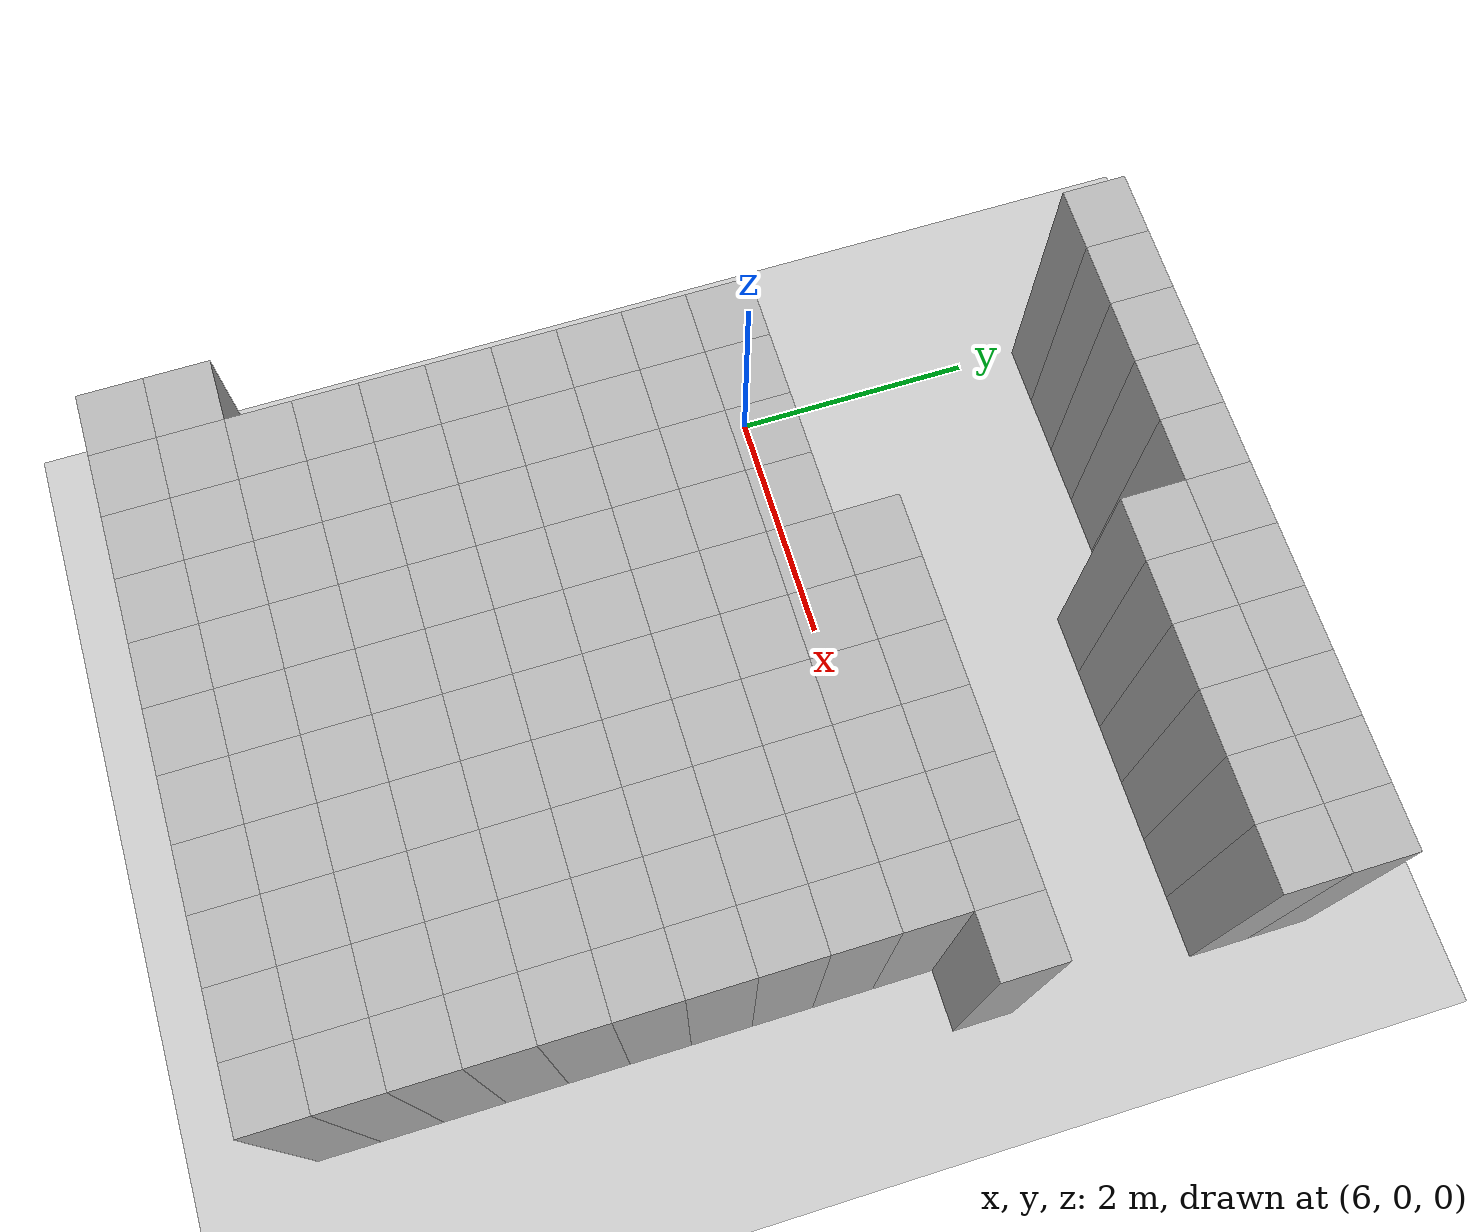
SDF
<sdf version="1.6">
 <world name="map_world">
  <include><uri>model://ground_plane</uri></include>
  <include><uri>model://sun</uri></include>
  <model name="wall_22">
   <static>true</static>
   <pose>6.250 2.750 1.250 0 0 0</pose>
   <link name="link">
    <collision name="collision"><geometry><box><size>0.500 0.500 2.500</size></box></geometry></collision>
    <visual name="visual"><geometry><box><size>0.500 0.500 2.500</size></box></geometry></visual>
   </link>
  </model>
  <model name="wall_23">
   <static>true</static>
   <pose>6.750 2.750 1.250 0 0 0</pose>
   <link name="link">
    <collision name="collision"><geometry><box><size>0.500 0.500 2.500</size></box></geometry></collision>
    <visual name="visual"><geometry><box><size>0.500 0.500 2.500</size></box></geometry></visual>
   </link>
  </model>
  <model name="wall_24">
   <static>true</static>
   <pose>7.250 2.750 1.250 0 0 0</pose>
   <link name="link">
    <collision name="collision"><geometry><box><size>0.500 0.500 2.500</size></box></geometry></collision>
    <visual name="visual"><geometry><box><size>0.500 0.500 2.500</size></box></geometry></visual>
   </link>
  </model>
  <model name="wall_25">
   <static>true</static>
   <pose>7.750 2.750 1.250 0 0 0</pose>
   <link name="link">
    <collision name="collision"><geometry><box><size>0.500 0.500 2.500</size></box></geometry></collision>
    <visual name="visual"><geometry><box><size>0.500 0.500 2.500</size></box></geometry></visual>
   </link>
  </model>
  <model name="wall_26">
   <static>true</static>
   <pose>8.250 2.750 1.250 0 0 0</pose>
   <link name="link">
    <collision name="collision"><geometry><box><size>0.500 0.500 2.500</size></box></geometry></collision>
    <visual name="visual"><geometry><box><size>0.500 0.500 2.500</size></box></geometry></visual>
   </link>
  </model>
  <model name="wall_27">
   <static>true</static>
   <pose>8.750 2.750 1.250 0 0 0</pose>
   <link name="link">
    <collision name="collision"><geometry><box><size>0.500 0.500 2.500</size></box></geometry></collision>
    <visual name="visual"><geometry><box><size>0.500 0.500 2.500</size></box></geometry></visual>
   </link>
  </model>
  <model name="wall_28">
   <static>true</static>
   <pose>9.250 2.750 1.250 0 0 0</pose>
   <link name="link">
    <collision name="collision"><geometry><box><size>0.500 0.500 2.500</size></box></geometry></collision>
    <visual name="visual"><geometry><box><size>0.500 0.500 2.500</size></box></geometry></visual>
   </link>
  </model>
  <model name="wall_29">
   <static>true</static>
   <pose>9.750 2.750 1.250 0 0 0</pose>
   <link name="link">
    <collision name="collision"><geometry><box><size>0.500 0.500 2.500</size></box></geometry></collision>
    <visual name="visual"><geometry><box><size>0.500 0.500 2.500</size></box></geometry></visual>
   </link>
  </model>
  <model name="wall_30">
   <static>true</static>
   <pose>10.250 2.750 1.250 0 0 0</pose>
   <link name="link">
    <collision name="collision"><geometry><box><size>0.500 0.500 2.500</size></box></geometry></collision>
    <visual name="visual"><geometry><box><size>0.500 0.500 2.500</size></box></geometry></visual>
   </link>
  </model>
  <model name="wall_31">
   <static>true</static>
   <pose>10.750 2.750 1.250 0 0 0</pose>
   <link name="link">
    <collision name="collision"><geometry><box><size>0.500 0.500 2.500</size></box></geometry></collision>
    <visual name="visual"><geometry><box><size>0.500 0.500 2.500</size></box></geometry></visual>
   </link>
  </model>
  <model name="wall_32">
   <static>true</static>
   <pose>11.250 2.750 1.250 0 0 0</pose>
   <link name="link">
    <collision name="collision"><geometry><box><size>0.500 0.500 2.500</size></box></geometry></collision>
    <visual name="visual"><geometry><box><size>0.500 0.500 2.500</size></box></geometry></visual>
   </link>
  </model>
  <model name="wall_92">
   <static>true</static>
   <pose>8.750 2.250 1.250 0 0 0</pose>
   <link name="link">
    <collision name="collision"><geometry><box><size>0.500 0.500 2.500</size></box></geometry></collision>
    <visual name="visual"><geometry><box><size>0.500 0.500 2.500</size></box></geometry></visual>
   </link>
  </model>
  <model name="wall_93">
   <static>true</static>
   <pose>9.250 2.250 1.250 0 0 0</pose>
   <link name="link">
    <collision name="collision"><geometry><box><size>0.500 0.500 2.500</size></box></geometry></collision>
    <visual name="visual"><geometry><box><size>0.500 0.500 2.500</size></box></geometry></visual>
   </link>
  </model>
  <model name="wall_94">
   <static>true</static>
   <pose>9.750 2.250 1.250 0 0 0</pose>
   <link name="link">
    <collision name="collision"><geometry><box><size>0.500 0.500 2.500</size></box></geometry></collision>
    <visual name="visual"><geometry><box><size>0.500 0.500 2.500</size></box></geometry></visual>
   </link>
  </model>
  <model name="wall_95">
   <static>true</static>
   <pose>10.250 2.250 1.250 0 0 0</pose>
   <link name="link">
    <collision name="collision"><geometry><box><size>0.500 0.500 2.500</size></box></geometry></collision>
    <visual name="visual"><geometry><box><size>0.500 0.500 2.500</size></box></geometry></visual>
   </link>
  </model>
  <model name="wall_96">
   <static>true</static>
   <pose>10.750 2.250 1.250 0 0 0</pose>
   <link name="link">
    <collision name="collision"><geometry><box><size>0.500 0.500 2.500</size></box></geometry></collision>
    <visual name="visual"><geometry><box><size>0.500 0.500 2.500</size></box></geometry></visual>
   </link>
  </model>
  <model name="wall_97">
   <static>true</static>
   <pose>11.250 2.250 1.250 0 0 0</pose>
   <link name="link">
    <collision name="collision"><geometry><box><size>0.500 0.500 2.500</size></box></geometry></collision>
    <visual name="visual"><geometry><box><size>0.500 0.500 2.500</size></box></geometry></visual>
   </link>
  </model>
  <model name="wall_125">
   <static>true</static>
   <pose>8.250 0.250 1.250 0 0 0</pose>
   <link name="link">
    <collision name="collision"><geometry><box><size>0.500 0.500 2.500</size></box></geometry></collision>
    <visual name="visual"><geometry><box><size>0.500 0.500 2.500</size></box></geometry></visual>
   </link>
  </model>
  <model name="wall_126">
   <static>true</static>
   <pose>8.750 0.250 1.250 0 0 0</pose>
   <link name="link">
    <collision name="collision"><geometry><box><size>0.500 0.500 2.500</size></box></geometry></collision>
    <visual name="visual"><geometry><box><size>0.500 0.500 2.500</size></box></geometry></visual>
   </link>
  </model>
  <model name="wall_127">
   <static>true</static>
   <pose>9.250 0.250 1.250 0 0 0</pose>
   <link name="link">
    <collision name="collision"><geometry><box><size>0.500 0.500 2.500</size></box></geometry></collision>
    <visual name="visual"><geometry><box><size>0.500 0.500 2.500</size></box></geometry></visual>
   </link>
  </model>
  <model name="wall_128">
   <static>true</static>
   <pose>9.750 0.250 1.250 0 0 0</pose>
   <link name="link">
    <collision name="collision"><geometry><box><size>0.500 0.500 2.500</size></box></geometry></collision>
    <visual name="visual"><geometry><box><size>0.500 0.500 2.500</size></box></geometry></visual>
   </link>
  </model>
  <model name="wall_129">
   <static>true</static>
   <pose>10.250 0.250 1.250 0 0 0</pose>
   <link name="link">
    <collision name="collision"><geometry><box><size>0.500 0.500 2.500</size></box></geometry></collision>
    <visual name="visual"><geometry><box><size>0.500 0.500 2.500</size></box></geometry></visual>
   </link>
  </model>
  <model name="wall_130">
   <static>true</static>
   <pose>10.750 0.250 1.250 0 0 0</pose>
   <link name="link">
    <collision name="collision"><geometry><box><size>0.500 0.500 2.500</size></box></geometry></collision>
    <visual name="visual"><geometry><box><size>0.500 0.500 2.500</size></box></geometry></visual>
   </link>
  </model>
  <model name="wall_131">
   <static>true</static>
   <pose>11.250 0.250 1.250 0 0 0</pose>
   <link name="link">
    <collision name="collision"><geometry><box><size>0.500 0.500 2.500</size></box></geometry></collision>
    <visual name="visual"><geometry><box><size>0.500 0.500 2.500</size></box></geometry></visual>
   </link>
  </model>
  <model name="wall_166">
   <static>true</static>
   <pose>6.250 -0.250 1.250 0 0 0</pose>
   <link name="link">
    <collision name="collision"><geometry><box><size>0.500 0.500 2.500</size></box></geometry></collision>
    <visual name="visual"><geometry><box><size>0.500 0.500 2.500</size></box></geometry></visual>
   </link>
  </model>
  <model name="wall_167">
   <static>true</static>
   <pose>6.750 -0.250 1.250 0 0 0</pose>
   <link name="link">
    <collision name="collision"><geometry><box><size>0.500 0.500 2.500</size></box></geometry></collision>
    <visual name="visual"><geometry><box><size>0.500 0.500 2.500</size></box></geometry></visual>
   </link>
  </model>
  <model name="wall_168">
   <static>true</static>
   <pose>7.250 -0.250 1.250 0 0 0</pose>
   <link name="link">
    <collision name="collision"><geometry><box><size>0.500 0.500 2.500</size></box></geometry></collision>
    <visual name="visual"><geometry><box><size>0.500 0.500 2.500</size></box></geometry></visual>
   </link>
  </model>
  <model name="wall_169">
   <static>true</static>
   <pose>7.750 -0.250 1.250 0 0 0</pose>
   <link name="link">
    <collision name="collision"><geometry><box><size>0.500 0.500 2.500</size></box></geometry></collision>
    <visual name="visual"><geometry><box><size>0.500 0.500 2.500</size></box></geometry></visual>
   </link>
  </model>
  <model name="wall_170">
   <static>true</static>
   <pose>8.250 -0.250 1.250 0 0 0</pose>
   <link name="link">
    <collision name="collision"><geometry><box><size>0.500 0.500 2.500</size></box></geometry></collision>
    <visual name="visual"><geometry><box><size>0.500 0.500 2.500</size></box></geometry></visual>
   </link>
  </model>
  <model name="wall_171">
   <static>true</static>
   <pose>8.750 -0.250 1.250 0 0 0</pose>
   <link name="link">
    <collision name="collision"><geometry><box><size>0.500 0.500 2.500</size></box></geometry></collision>
    <visual name="visual"><geometry><box><size>0.500 0.500 2.500</size></box></geometry></visual>
   </link>
  </model>
  <model name="wall_172">
   <static>true</static>
   <pose>9.250 -0.250 1.250 0 0 0</pose>
   <link name="link">
    <collision name="collision"><geometry><box><size>0.500 0.500 2.500</size></box></geometry></collision>
    <visual name="visual"><geometry><box><size>0.500 0.500 2.500</size></box></geometry></visual>
   </link>
  </model>
  <model name="wall_173">
   <static>true</static>
   <pose>9.750 -0.250 1.250 0 0 0</pose>
   <link name="link">
    <collision name="collision"><geometry><box><size>0.500 0.500 2.500</size></box></geometry></collision>
    <visual name="visual"><geometry><box><size>0.500 0.500 2.500</size></box></geometry></visual>
   </link>
  </model>
  <model name="wall_174">
   <static>true</static>
   <pose>10.250 -0.250 1.250 0 0 0</pose>
   <link name="link">
    <collision name="collision"><geometry><box><size>0.500 0.500 2.500</size></box></geometry></collision>
    <visual name="visual"><geometry><box><size>0.500 0.500 2.500</size></box></geometry></visual>
   </link>
  </model>
  <model name="wall_175">
   <static>true</static>
   <pose>10.750 -0.250 1.250 0 0 0</pose>
   <link name="link">
    <collision name="collision"><geometry><box><size>0.500 0.500 2.500</size></box></geometry></collision>
    <visual name="visual"><geometry><box><size>0.500 0.500 2.500</size></box></geometry></visual>
   </link>
  </model>
  <model name="wall_238">
   <static>true</static>
   <pose>6.250 -0.750 1.250 0 0 0</pose>
   <link name="link">
    <collision name="collision"><geometry><box><size>0.500 0.500 2.500</size></box></geometry></collision>
    <visual name="visual"><geometry><box><size>0.500 0.500 2.500</size></box></geometry></visual>
   </link>
  </model>
  <model name="wall_239">
   <static>true</static>
   <pose>6.750 -0.750 1.250 0 0 0</pose>
   <link name="link">
    <collision name="collision"><geometry><box><size>0.500 0.500 2.500</size></box></geometry></collision>
    <visual name="visual"><geometry><box><size>0.500 0.500 2.500</size></box></geometry></visual>
   </link>
  </model>
  <model name="wall_240">
   <static>true</static>
   <pose>7.250 -0.750 1.250 0 0 0</pose>
   <link name="link">
    <collision name="collision"><geometry><box><size>0.500 0.500 2.500</size></box></geometry></collision>
    <visual name="visual"><geometry><box><size>0.500 0.500 2.500</size></box></geometry></visual>
   </link>
  </model>
  <model name="wall_241">
   <static>true</static>
   <pose>7.750 -0.750 1.250 0 0 0</pose>
   <link name="link">
    <collision name="collision"><geometry><box><size>0.500 0.500 2.500</size></box></geometry></collision>
    <visual name="visual"><geometry><box><size>0.500 0.500 2.500</size></box></geometry></visual>
   </link>
  </model>
  <model name="wall_242">
   <static>true</static>
   <pose>8.250 -0.750 1.250 0 0 0</pose>
   <link name="link">
    <collision name="collision"><geometry><box><size>0.500 0.500 2.500</size></box></geometry></collision>
    <visual name="visual"><geometry><box><size>0.500 0.500 2.500</size></box></geometry></visual>
   </link>
  </model>
  <model name="wall_243">
   <static>true</static>
   <pose>8.750 -0.750 1.250 0 0 0</pose>
   <link name="link">
    <collision name="collision"><geometry><box><size>0.500 0.500 2.500</size></box></geometry></collision>
    <visual name="visual"><geometry><box><size>0.500 0.500 2.500</size></box></geometry></visual>
   </link>
  </model>
  <model name="wall_244">
   <static>true</static>
   <pose>9.250 -0.750 1.250 0 0 0</pose>
   <link name="link">
    <collision name="collision"><geometry><box><size>0.500 0.500 2.500</size></box></geometry></collision>
    <visual name="visual"><geometry><box><size>0.500 0.500 2.500</size></box></geometry></visual>
   </link>
  </model>
  <model name="wall_245">
   <static>true</static>
   <pose>9.750 -0.750 1.250 0 0 0</pose>
   <link name="link">
    <collision name="collision"><geometry><box><size>0.500 0.500 2.500</size></box></geometry></collision>
    <visual name="visual"><geometry><box><size>0.500 0.500 2.500</size></box></geometry></visual>
   </link>
  </model>
  <model name="wall_246">
   <static>true</static>
   <pose>10.250 -0.750 1.250 0 0 0</pose>
   <link name="link">
    <collision name="collision"><geometry><box><size>0.500 0.500 2.500</size></box></geometry></collision>
    <visual name="visual"><geometry><box><size>0.500 0.500 2.500</size></box></geometry></visual>
   </link>
  </model>
  <model name="wall_247">
   <static>true</static>
   <pose>10.750 -0.750 1.250 0 0 0</pose>
   <link name="link">
    <collision name="collision"><geometry><box><size>0.500 0.500 2.500</size></box></geometry></collision>
    <visual name="visual"><geometry><box><size>0.500 0.500 2.500</size></box></geometry></visual>
   </link>
  </model>
  <model name="wall_310">
   <static>true</static>
   <pose>6.250 -1.250 1.250 0 0 0</pose>
   <link name="link">
    <collision name="collision"><geometry><box><size>0.500 0.500 2.500</size></box></geometry></collision>
    <visual name="visual"><geometry><box><size>0.500 0.500 2.500</size></box></geometry></visual>
   </link>
  </model>
  <model name="wall_311">
   <static>true</static>
   <pose>6.750 -1.250 1.250 0 0 0</pose>
   <link name="link">
    <collision name="collision"><geometry><box><size>0.500 0.500 2.500</size></box></geometry></collision>
    <visual name="visual"><geometry><box><size>0.500 0.500 2.500</size></box></geometry></visual>
   </link>
  </model>
  <model name="wall_312">
   <static>true</static>
   <pose>7.250 -1.250 1.250 0 0 0</pose>
   <link name="link">
    <collision name="collision"><geometry><box><size>0.500 0.500 2.500</size></box></geometry></collision>
    <visual name="visual"><geometry><box><size>0.500 0.500 2.500</size></box></geometry></visual>
   </link>
  </model>
  <model name="wall_313">
   <static>true</static>
   <pose>7.750 -1.250 1.250 0 0 0</pose>
   <link name="link">
    <collision name="collision"><geometry><box><size>0.500 0.500 2.500</size></box></geometry></collision>
    <visual name="visual"><geometry><box><size>0.500 0.500 2.500</size></box></geometry></visual>
   </link>
  </model>
  <model name="wall_314">
   <static>true</static>
   <pose>8.250 -1.250 1.250 0 0 0</pose>
   <link name="link">
    <collision name="collision"><geometry><box><size>0.500 0.500 2.500</size></box></geometry></collision>
    <visual name="visual"><geometry><box><size>0.500 0.500 2.500</size></box></geometry></visual>
   </link>
  </model>
  <model name="wall_315">
   <static>true</static>
   <pose>8.750 -1.250 1.250 0 0 0</pose>
   <link name="link">
    <collision name="collision"><geometry><box><size>0.500 0.500 2.500</size></box></geometry></collision>
    <visual name="visual"><geometry><box><size>0.500 0.500 2.500</size></box></geometry></visual>
   </link>
  </model>
  <model name="wall_316">
   <static>true</static>
   <pose>9.250 -1.250 1.250 0 0 0</pose>
   <link name="link">
    <collision name="collision"><geometry><box><size>0.500 0.500 2.500</size></box></geometry></collision>
    <visual name="visual"><geometry><box><size>0.500 0.500 2.500</size></box></geometry></visual>
   </link>
  </model>
  <model name="wall_317">
   <static>true</static>
   <pose>9.750 -1.250 1.250 0 0 0</pose>
   <link name="link">
    <collision name="collision"><geometry><box><size>0.500 0.500 2.500</size></box></geometry></collision>
    <visual name="visual"><geometry><box><size>0.500 0.500 2.500</size></box></geometry></visual>
   </link>
  </model>
  <model name="wall_318">
   <static>true</static>
   <pose>10.250 -1.250 1.250 0 0 0</pose>
   <link name="link">
    <collision name="collision"><geometry><box><size>0.500 0.500 2.500</size></box></geometry></collision>
    <visual name="visual"><geometry><box><size>0.500 0.500 2.500</size></box></geometry></visual>
   </link>
  </model>
  <model name="wall_319">
   <static>true</static>
   <pose>10.750 -1.250 1.250 0 0 0</pose>
   <link name="link">
    <collision name="collision"><geometry><box><size>0.500 0.500 2.500</size></box></geometry></collision>
    <visual name="visual"><geometry><box><size>0.500 0.500 2.500</size></box></geometry></visual>
   </link>
  </model>
  <model name="wall_382">
   <static>true</static>
   <pose>6.250 -1.750 1.250 0 0 0</pose>
   <link name="link">
    <collision name="collision"><geometry><box><size>0.500 0.500 2.500</size></box></geometry></collision>
    <visual name="visual"><geometry><box><size>0.500 0.500 2.500</size></box></geometry></visual>
   </link>
  </model>
  <model name="wall_383">
   <static>true</static>
   <pose>6.750 -1.750 1.250 0 0 0</pose>
   <link name="link">
    <collision name="collision"><geometry><box><size>0.500 0.500 2.500</size></box></geometry></collision>
    <visual name="visual"><geometry><box><size>0.500 0.500 2.500</size></box></geometry></visual>
   </link>
  </model>
  <model name="wall_384">
   <static>true</static>
   <pose>7.250 -1.750 1.250 0 0 0</pose>
   <link name="link">
    <collision name="collision"><geometry><box><size>0.500 0.500 2.500</size></box></geometry></collision>
    <visual name="visual"><geometry><box><size>0.500 0.500 2.500</size></box></geometry></visual>
   </link>
  </model>
  <model name="wall_385">
   <static>true</static>
   <pose>7.750 -1.750 1.250 0 0 0</pose>
   <link name="link">
    <collision name="collision"><geometry><box><size>0.500 0.500 2.500</size></box></geometry></collision>
    <visual name="visual"><geometry><box><size>0.500 0.500 2.500</size></box></geometry></visual>
   </link>
  </model>
  <model name="wall_386">
   <static>true</static>
   <pose>8.250 -1.750 1.250 0 0 0</pose>
   <link name="link">
    <collision name="collision"><geometry><box><size>0.500 0.500 2.500</size></box></geometry></collision>
    <visual name="visual"><geometry><box><size>0.500 0.500 2.500</size></box></geometry></visual>
   </link>
  </model>
  <model name="wall_387">
   <static>true</static>
   <pose>8.750 -1.750 1.250 0 0 0</pose>
   <link name="link">
    <collision name="collision"><geometry><box><size>0.500 0.500 2.500</size></box></geometry></collision>
    <visual name="visual"><geometry><box><size>0.500 0.500 2.500</size></box></geometry></visual>
   </link>
  </model>
  <model name="wall_388">
   <static>true</static>
   <pose>9.250 -1.750 1.250 0 0 0</pose>
   <link name="link">
    <collision name="collision"><geometry><box><size>0.500 0.500 2.500</size></box></geometry></collision>
    <visual name="visual"><geometry><box><size>0.500 0.500 2.500</size></box></geometry></visual>
   </link>
  </model>
  <model name="wall_389">
   <static>true</static>
   <pose>9.750 -1.750 1.250 0 0 0</pose>
   <link name="link">
    <collision name="collision"><geometry><box><size>0.500 0.500 2.500</size></box></geometry></collision>
    <visual name="visual"><geometry><box><size>0.500 0.500 2.500</size></box></geometry></visual>
   </link>
  </model>
  <model name="wall_390">
   <static>true</static>
   <pose>10.250 -1.750 1.250 0 0 0</pose>
   <link name="link">
    <collision name="collision"><geometry><box><size>0.500 0.500 2.500</size></box></geometry></collision>
    <visual name="visual"><geometry><box><size>0.500 0.500 2.500</size></box></geometry></visual>
   </link>
  </model>
  <model name="wall_391">
   <static>true</static>
   <pose>10.750 -1.750 1.250 0 0 0</pose>
   <link name="link">
    <collision name="collision"><geometry><box><size>0.500 0.500 2.500</size></box></geometry></collision>
    <visual name="visual"><geometry><box><size>0.500 0.500 2.500</size></box></geometry></visual>
   </link>
  </model>
  <model name="wall_454">
   <static>true</static>
   <pose>6.250 -2.250 1.250 0 0 0</pose>
   <link name="link">
    <collision name="collision"><geometry><box><size>0.500 0.500 2.500</size></box></geometry></collision>
    <visual name="visual"><geometry><box><size>0.500 0.500 2.500</size></box></geometry></visual>
   </link>
  </model>
  <model name="wall_455">
   <static>true</static>
   <pose>6.750 -2.250 1.250 0 0 0</pose>
   <link name="link">
    <collision name="collision"><geometry><box><size>0.500 0.500 2.500</size></box></geometry></collision>
    <visual name="visual"><geometry><box><size>0.500 0.500 2.500</size></box></geometry></visual>
   </link>
  </model>
  <model name="wall_456">
   <static>true</static>
   <pose>7.250 -2.250 1.250 0 0 0</pose>
   <link name="link">
    <collision name="collision"><geometry><box><size>0.500 0.500 2.500</size></box></geometry></collision>
    <visual name="visual"><geometry><box><size>0.500 0.500 2.500</size></box></geometry></visual>
   </link>
  </model>
  <model name="wall_457">
   <static>true</static>
   <pose>7.750 -2.250 1.250 0 0 0</pose>
   <link name="link">
    <collision name="collision"><geometry><box><size>0.500 0.500 2.500</size></box></geometry></collision>
    <visual name="visual"><geometry><box><size>0.500 0.500 2.500</size></box></geometry></visual>
   </link>
  </model>
  <model name="wall_458">
   <static>true</static>
   <pose>8.250 -2.250 1.250 0 0 0</pose>
   <link name="link">
    <collision name="collision"><geometry><box><size>0.500 0.500 2.500</size></box></geometry></collision>
    <visual name="visual"><geometry><box><size>0.500 0.500 2.500</size></box></geometry></visual>
   </link>
  </model>
  <model name="wall_459">
   <static>true</static>
   <pose>8.750 -2.250 1.250 0 0 0</pose>
   <link name="link">
    <collision name="collision"><geometry><box><size>0.500 0.500 2.500</size></box></geometry></collision>
    <visual name="visual"><geometry><box><size>0.500 0.500 2.500</size></box></geometry></visual>
   </link>
  </model>
  <model name="wall_460">
   <static>true</static>
   <pose>9.250 -2.250 1.250 0 0 0</pose>
   <link name="link">
    <collision name="collision"><geometry><box><size>0.500 0.500 2.500</size></box></geometry></collision>
    <visual name="visual"><geometry><box><size>0.500 0.500 2.500</size></box></geometry></visual>
   </link>
  </model>
  <model name="wall_461">
   <static>true</static>
   <pose>9.750 -2.250 1.250 0 0 0</pose>
   <link name="link">
    <collision name="collision"><geometry><box><size>0.500 0.500 2.500</size></box></geometry></collision>
    <visual name="visual"><geometry><box><size>0.500 0.500 2.500</size></box></geometry></visual>
   </link>
  </model>
  <model name="wall_462">
   <static>true</static>
   <pose>10.250 -2.250 1.250 0 0 0</pose>
   <link name="link">
    <collision name="collision"><geometry><box><size>0.500 0.500 2.500</size></box></geometry></collision>
    <visual name="visual"><geometry><box><size>0.500 0.500 2.500</size></box></geometry></visual>
   </link>
  </model>
  <model name="wall_463">
   <static>true</static>
   <pose>10.750 -2.250 1.250 0 0 0</pose>
   <link name="link">
    <collision name="collision"><geometry><box><size>0.500 0.500 2.500</size></box></geometry></collision>
    <visual name="visual"><geometry><box><size>0.500 0.500 2.500</size></box></geometry></visual>
   </link>
  </model>
  <model name="wall_526">
   <static>true</static>
   <pose>6.250 -2.750 1.250 0 0 0</pose>
   <link name="link">
    <collision name="collision"><geometry><box><size>0.500 0.500 2.500</size></box></geometry></collision>
    <visual name="visual"><geometry><box><size>0.500 0.500 2.500</size></box></geometry></visual>
   </link>
  </model>
  <model name="wall_527">
   <static>true</static>
   <pose>6.750 -2.750 1.250 0 0 0</pose>
   <link name="link">
    <collision name="collision"><geometry><box><size>0.500 0.500 2.500</size></box></geometry></collision>
    <visual name="visual"><geometry><box><size>0.500 0.500 2.500</size></box></geometry></visual>
   </link>
  </model>
  <model name="wall_528">
   <static>true</static>
   <pose>7.250 -2.750 1.250 0 0 0</pose>
   <link name="link">
    <collision name="collision"><geometry><box><size>0.500 0.500 2.500</size></box></geometry></collision>
    <visual name="visual"><geometry><box><size>0.500 0.500 2.500</size></box></geometry></visual>
   </link>
  </model>
  <model name="wall_529">
   <static>true</static>
   <pose>7.750 -2.750 1.250 0 0 0</pose>
   <link name="link">
    <collision name="collision"><geometry><box><size>0.500 0.500 2.500</size></box></geometry></collision>
    <visual name="visual"><geometry><box><size>0.500 0.500 2.500</size></box></geometry></visual>
   </link>
  </model>
  <model name="wall_530">
   <static>true</static>
   <pose>8.250 -2.750 1.250 0 0 0</pose>
   <link name="link">
    <collision name="collision"><geometry><box><size>0.500 0.500 2.500</size></box></geometry></collision>
    <visual name="visual"><geometry><box><size>0.500 0.500 2.500</size></box></geometry></visual>
   </link>
  </model>
  <model name="wall_531">
   <static>true</static>
   <pose>8.750 -2.750 1.250 0 0 0</pose>
   <link name="link">
    <collision name="collision"><geometry><box><size>0.500 0.500 2.500</size></box></geometry></collision>
    <visual name="visual"><geometry><box><size>0.500 0.500 2.500</size></box></geometry></visual>
   </link>
  </model>
  <model name="wall_532">
   <static>true</static>
   <pose>9.250 -2.750 1.250 0 0 0</pose>
   <link name="link">
    <collision name="collision"><geometry><box><size>0.500 0.500 2.500</size></box></geometry></collision>
    <visual name="visual"><geometry><box><size>0.500 0.500 2.500</size></box></geometry></visual>
   </link>
  </model>
  <model name="wall_533">
   <static>true</static>
   <pose>9.750 -2.750 1.250 0 0 0</pose>
   <link name="link">
    <collision name="collision"><geometry><box><size>0.500 0.500 2.500</size></box></geometry></collision>
    <visual name="visual"><geometry><box><size>0.500 0.500 2.500</size></box></geometry></visual>
   </link>
  </model>
  <model name="wall_534">
   <static>true</static>
   <pose>10.250 -2.750 1.250 0 0 0</pose>
   <link name="link">
    <collision name="collision"><geometry><box><size>0.500 0.500 2.500</size></box></geometry></collision>
    <visual name="visual"><geometry><box><size>0.500 0.500 2.500</size></box></geometry></visual>
   </link>
  </model>
  <model name="wall_535">
   <static>true</static>
   <pose>10.750 -2.750 1.250 0 0 0</pose>
   <link name="link">
    <collision name="collision"><geometry><box><size>0.500 0.500 2.500</size></box></geometry></collision>
    <visual name="visual"><geometry><box><size>0.500 0.500 2.500</size></box></geometry></visual>
   </link>
  </model>
  <model name="wall_598">
   <static>true</static>
   <pose>6.250 -3.250 1.250 0 0 0</pose>
   <link name="link">
    <collision name="collision"><geometry><box><size>0.500 0.500 2.500</size></box></geometry></collision>
    <visual name="visual"><geometry><box><size>0.500 0.500 2.500</size></box></geometry></visual>
   </link>
  </model>
  <model name="wall_599">
   <static>true</static>
   <pose>6.750 -3.250 1.250 0 0 0</pose>
   <link name="link">
    <collision name="collision"><geometry><box><size>0.500 0.500 2.500</size></box></geometry></collision>
    <visual name="visual"><geometry><box><size>0.500 0.500 2.500</size></box></geometry></visual>
   </link>
  </model>
  <model name="wall_600">
   <static>true</static>
   <pose>7.250 -3.250 1.250 0 0 0</pose>
   <link name="link">
    <collision name="collision"><geometry><box><size>0.500 0.500 2.500</size></box></geometry></collision>
    <visual name="visual"><geometry><box><size>0.500 0.500 2.500</size></box></geometry></visual>
   </link>
  </model>
  <model name="wall_601">
   <static>true</static>
   <pose>7.750 -3.250 1.250 0 0 0</pose>
   <link name="link">
    <collision name="collision"><geometry><box><size>0.500 0.500 2.500</size></box></geometry></collision>
    <visual name="visual"><geometry><box><size>0.500 0.500 2.500</size></box></geometry></visual>
   </link>
  </model>
  <model name="wall_602">
   <static>true</static>
   <pose>8.250 -3.250 1.250 0 0 0</pose>
   <link name="link">
    <collision name="collision"><geometry><box><size>0.500 0.500 2.500</size></box></geometry></collision>
    <visual name="visual"><geometry><box><size>0.500 0.500 2.500</size></box></geometry></visual>
   </link>
  </model>
  <model name="wall_603">
   <static>true</static>
   <pose>8.750 -3.250 1.250 0 0 0</pose>
   <link name="link">
    <collision name="collision"><geometry><box><size>0.500 0.500 2.500</size></box></geometry></collision>
    <visual name="visual"><geometry><box><size>0.500 0.500 2.500</size></box></geometry></visual>
   </link>
  </model>
  <model name="wall_604">
   <static>true</static>
   <pose>9.250 -3.250 1.250 0 0 0</pose>
   <link name="link">
    <collision name="collision"><geometry><box><size>0.500 0.500 2.500</size></box></geometry></collision>
    <visual name="visual"><geometry><box><size>0.500 0.500 2.500</size></box></geometry></visual>
   </link>
  </model>
  <model name="wall_605">
   <static>true</static>
   <pose>9.750 -3.250 1.250 0 0 0</pose>
   <link name="link">
    <collision name="collision"><geometry><box><size>0.500 0.500 2.500</size></box></geometry></collision>
    <visual name="visual"><geometry><box><size>0.500 0.500 2.500</size></box></geometry></visual>
   </link>
  </model>
  <model name="wall_606">
   <static>true</static>
   <pose>10.250 -3.250 1.250 0 0 0</pose>
   <link name="link">
    <collision name="collision"><geometry><box><size>0.500 0.500 2.500</size></box></geometry></collision>
    <visual name="visual"><geometry><box><size>0.500 0.500 2.500</size></box></geometry></visual>
   </link>
  </model>
  <model name="wall_607">
   <static>true</static>
   <pose>10.750 -3.250 1.250 0 0 0</pose>
   <link name="link">
    <collision name="collision"><geometry><box><size>0.500 0.500 2.500</size></box></geometry></collision>
    <visual name="visual"><geometry><box><size>0.500 0.500 2.500</size></box></geometry></visual>
   </link>
  </model>
  <model name="wall_670">
   <static>true</static>
   <pose>6.250 -3.750 1.250 0 0 0</pose>
   <link name="link">
    <collision name="collision"><geometry><box><size>0.500 0.500 2.500</size></box></geometry></collision>
    <visual name="visual"><geometry><box><size>0.500 0.500 2.500</size></box></geometry></visual>
   </link>
  </model>
  <model name="wall_671">
   <static>true</static>
   <pose>6.750 -3.750 1.250 0 0 0</pose>
   <link name="link">
    <collision name="collision"><geometry><box><size>0.500 0.500 2.500</size></box></geometry></collision>
    <visual name="visual"><geometry><box><size>0.500 0.500 2.500</size></box></geometry></visual>
   </link>
  </model>
  <model name="wall_672">
   <static>true</static>
   <pose>7.250 -3.750 1.250 0 0 0</pose>
   <link name="link">
    <collision name="collision"><geometry><box><size>0.500 0.500 2.500</size></box></geometry></collision>
    <visual name="visual"><geometry><box><size>0.500 0.500 2.500</size></box></geometry></visual>
   </link>
  </model>
  <model name="wall_673">
   <static>true</static>
   <pose>7.750 -3.750 1.250 0 0 0</pose>
   <link name="link">
    <collision name="collision"><geometry><box><size>0.500 0.500 2.500</size></box></geometry></collision>
    <visual name="visual"><geometry><box><size>0.500 0.500 2.500</size></box></geometry></visual>
   </link>
  </model>
  <model name="wall_674">
   <static>true</static>
   <pose>8.250 -3.750 1.250 0 0 0</pose>
   <link name="link">
    <collision name="collision"><geometry><box><size>0.500 0.500 2.500</size></box></geometry></collision>
    <visual name="visual"><geometry><box><size>0.500 0.500 2.500</size></box></geometry></visual>
   </link>
  </model>
  <model name="wall_675">
   <static>true</static>
   <pose>8.750 -3.750 1.250 0 0 0</pose>
   <link name="link">
    <collision name="collision"><geometry><box><size>0.500 0.500 2.500</size></box></geometry></collision>
    <visual name="visual"><geometry><box><size>0.500 0.500 2.500</size></box></geometry></visual>
   </link>
  </model>
  <model name="wall_676">
   <static>true</static>
   <pose>9.250 -3.750 1.250 0 0 0</pose>
   <link name="link">
    <collision name="collision"><geometry><box><size>0.500 0.500 2.500</size></box></geometry></collision>
    <visual name="visual"><geometry><box><size>0.500 0.500 2.500</size></box></geometry></visual>
   </link>
  </model>
  <model name="wall_677">
   <static>true</static>
   <pose>9.750 -3.750 1.250 0 0 0</pose>
   <link name="link">
    <collision name="collision"><geometry><box><size>0.500 0.500 2.500</size></box></geometry></collision>
    <visual name="visual"><geometry><box><size>0.500 0.500 2.500</size></box></geometry></visual>
   </link>
  </model>
  <model name="wall_678">
   <static>true</static>
   <pose>10.250 -3.750 1.250 0 0 0</pose>
   <link name="link">
    <collision name="collision"><geometry><box><size>0.500 0.500 2.500</size></box></geometry></collision>
    <visual name="visual"><geometry><box><size>0.500 0.500 2.500</size></box></geometry></visual>
   </link>
  </model>
  <model name="wall_679">
   <static>true</static>
   <pose>10.750 -3.750 1.250 0 0 0</pose>
   <link name="link">
    <collision name="collision"><geometry><box><size>0.500 0.500 2.500</size></box></geometry></collision>
    <visual name="visual"><geometry><box><size>0.500 0.500 2.500</size></box></geometry></visual>
   </link>
  </model>
  <model name="wall_741">
   <static>true</static>
   <pose>5.750 -4.250 1.250 0 0 0</pose>
   <link name="link">
    <collision name="collision"><geometry><box><size>0.500 0.500 2.500</size></box></geometry></collision>
    <visual name="visual"><geometry><box><size>0.500 0.500 2.500</size></box></geometry></visual>
   </link>
  </model>
  <model name="wall_742">
   <static>true</static>
   <pose>6.250 -4.250 1.250 0 0 0</pose>
   <link name="link">
    <collision name="collision"><geometry><box><size>0.500 0.500 2.500</size></box></geometry></collision>
    <visual name="visual"><geometry><box><size>0.500 0.500 2.500</size></box></geometry></visual>
   </link>
  </model>
  <model name="wall_743">
   <static>true</static>
   <pose>6.750 -4.250 1.250 0 0 0</pose>
   <link name="link">
    <collision name="collision"><geometry><box><size>0.500 0.500 2.500</size></box></geometry></collision>
    <visual name="visual"><geometry><box><size>0.500 0.500 2.500</size></box></geometry></visual>
   </link>
  </model>
  <model name="wall_744">
   <static>true</static>
   <pose>7.250 -4.250 1.250 0 0 0</pose>
   <link name="link">
    <collision name="collision"><geometry><box><size>0.500 0.500 2.500</size></box></geometry></collision>
    <visual name="visual"><geometry><box><size>0.500 0.500 2.500</size></box></geometry></visual>
   </link>
  </model>
  <model name="wall_745">
   <static>true</static>
   <pose>7.750 -4.250 1.250 0 0 0</pose>
   <link name="link">
    <collision name="collision"><geometry><box><size>0.500 0.500 2.500</size></box></geometry></collision>
    <visual name="visual"><geometry><box><size>0.500 0.500 2.500</size></box></geometry></visual>
   </link>
  </model>
  <model name="wall_746">
   <static>true</static>
   <pose>8.250 -4.250 1.250 0 0 0</pose>
   <link name="link">
    <collision name="collision"><geometry><box><size>0.500 0.500 2.500</size></box></geometry></collision>
    <visual name="visual"><geometry><box><size>0.500 0.500 2.500</size></box></geometry></visual>
   </link>
  </model>
  <model name="wall_747">
   <static>true</static>
   <pose>8.750 -4.250 1.250 0 0 0</pose>
   <link name="link">
    <collision name="collision"><geometry><box><size>0.500 0.500 2.500</size></box></geometry></collision>
    <visual name="visual"><geometry><box><size>0.500 0.500 2.500</size></box></geometry></visual>
   </link>
  </model>
  <model name="wall_748">
   <static>true</static>
   <pose>9.250 -4.250 1.250 0 0 0</pose>
   <link name="link">
    <collision name="collision"><geometry><box><size>0.500 0.500 2.500</size></box></geometry></collision>
    <visual name="visual"><geometry><box><size>0.500 0.500 2.500</size></box></geometry></visual>
   </link>
  </model>
  <model name="wall_749">
   <static>true</static>
   <pose>9.750 -4.250 1.250 0 0 0</pose>
   <link name="link">
    <collision name="collision"><geometry><box><size>0.500 0.500 2.500</size></box></geometry></collision>
    <visual name="visual"><geometry><box><size>0.500 0.500 2.500</size></box></geometry></visual>
   </link>
  </model>
  <model name="wall_750">
   <static>true</static>
   <pose>10.250 -4.250 1.250 0 0 0</pose>
   <link name="link">
    <collision name="collision"><geometry><box><size>0.500 0.500 2.500</size></box></geometry></collision>
    <visual name="visual"><geometry><box><size>0.500 0.500 2.500</size></box></geometry></visual>
   </link>
  </model>
  <model name="wall_751">
   <static>true</static>
   <pose>10.750 -4.250 1.250 0 0 0</pose>
   <link name="link">
    <collision name="collision"><geometry><box><size>0.500 0.500 2.500</size></box></geometry></collision>
    <visual name="visual"><geometry><box><size>0.500 0.500 2.500</size></box></geometry></visual>
   </link>
  </model>
  <model name="wall_813">
   <static>true</static>
   <pose>5.750 -4.750 1.250 0 0 0</pose>
   <link name="link">
    <collision name="collision"><geometry><box><size>0.500 0.500 2.500</size></box></geometry></collision>
    <visual name="visual"><geometry><box><size>0.500 0.500 2.500</size></box></geometry></visual>
   </link>
  </model>
  <model name="wall_814">
   <static>true</static>
   <pose>6.250 -4.750 1.250 0 0 0</pose>
   <link name="link">
    <collision name="collision"><geometry><box><size>0.500 0.500 2.500</size></box></geometry></collision>
    <visual name="visual"><geometry><box><size>0.500 0.500 2.500</size></box></geometry></visual>
   </link>
  </model>
  <model name="wall_815">
   <static>true</static>
   <pose>6.750 -4.750 1.250 0 0 0</pose>
   <link name="link">
    <collision name="collision"><geometry><box><size>0.500 0.500 2.500</size></box></geometry></collision>
    <visual name="visual"><geometry><box><size>0.500 0.500 2.500</size></box></geometry></visual>
   </link>
  </model>
  <model name="wall_816">
   <static>true</static>
   <pose>7.250 -4.750 1.250 0 0 0</pose>
   <link name="link">
    <collision name="collision"><geometry><box><size>0.500 0.500 2.500</size></box></geometry></collision>
    <visual name="visual"><geometry><box><size>0.500 0.500 2.500</size></box></geometry></visual>
   </link>
  </model>
  <model name="wall_817">
   <static>true</static>
   <pose>7.750 -4.750 1.250 0 0 0</pose>
   <link name="link">
    <collision name="collision"><geometry><box><size>0.500 0.500 2.500</size></box></geometry></collision>
    <visual name="visual"><geometry><box><size>0.500 0.500 2.500</size></box></geometry></visual>
   </link>
  </model>
  <model name="wall_818">
   <static>true</static>
   <pose>8.250 -4.750 1.250 0 0 0</pose>
   <link name="link">
    <collision name="collision"><geometry><box><size>0.500 0.500 2.500</size></box></geometry></collision>
    <visual name="visual"><geometry><box><size>0.500 0.500 2.500</size></box></geometry></visual>
   </link>
  </model>
  <model name="wall_819">
   <static>true</static>
   <pose>8.750 -4.750 1.250 0 0 0</pose>
   <link name="link">
    <collision name="collision"><geometry><box><size>0.500 0.500 2.500</size></box></geometry></collision>
    <visual name="visual"><geometry><box><size>0.500 0.500 2.500</size></box></geometry></visual>
   </link>
  </model>
  <model name="wall_820">
   <static>true</static>
   <pose>9.250 -4.750 1.250 0 0 0</pose>
   <link name="link">
    <collision name="collision"><geometry><box><size>0.500 0.500 2.500</size></box></geometry></collision>
    <visual name="visual"><geometry><box><size>0.500 0.500 2.500</size></box></geometry></visual>
   </link>
  </model>
  <model name="wall_821">
   <static>true</static>
   <pose>9.750 -4.750 1.250 0 0 0</pose>
   <link name="link">
    <collision name="collision"><geometry><box><size>0.500 0.500 2.500</size></box></geometry></collision>
    <visual name="visual"><geometry><box><size>0.500 0.500 2.500</size></box></geometry></visual>
   </link>
  </model>
  <model name="wall_822">
   <static>true</static>
   <pose>10.250 -4.750 1.250 0 0 0</pose>
   <link name="link">
    <collision name="collision"><geometry><box><size>0.500 0.500 2.500</size></box></geometry></collision>
    <visual name="visual"><geometry><box><size>0.500 0.500 2.500</size></box></geometry></visual>
   </link>
  </model>
  <model name="wall_823">
   <static>true</static>
   <pose>10.750 -4.750 1.250 0 0 0</pose>
   <link name="link">
    <collision name="collision"><geometry><box><size>0.500 0.500 2.500</size></box></geometry></collision>
    <visual name="visual"><geometry><box><size>0.500 0.500 2.500</size></box></geometry></visual>
   </link>
  </model>
 </world>
</sdf>
